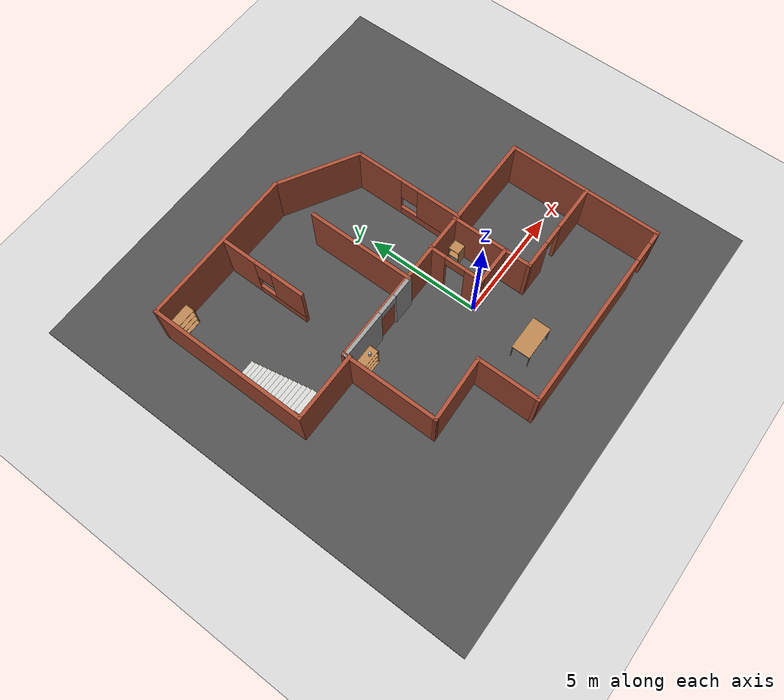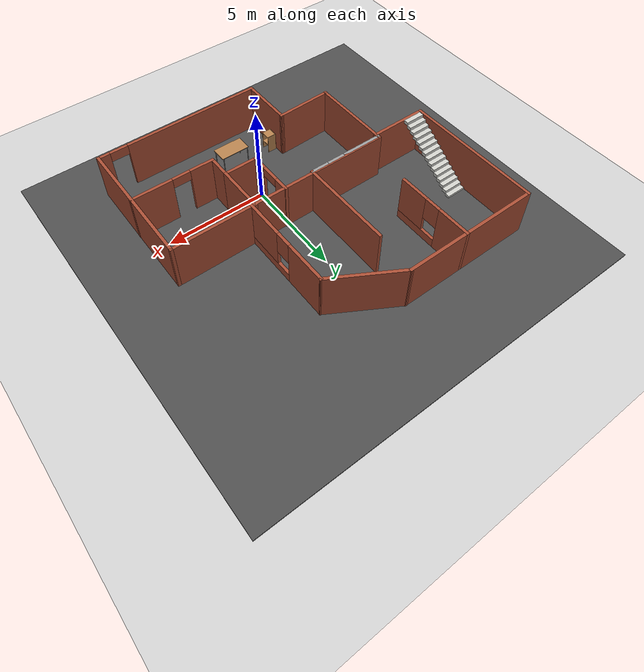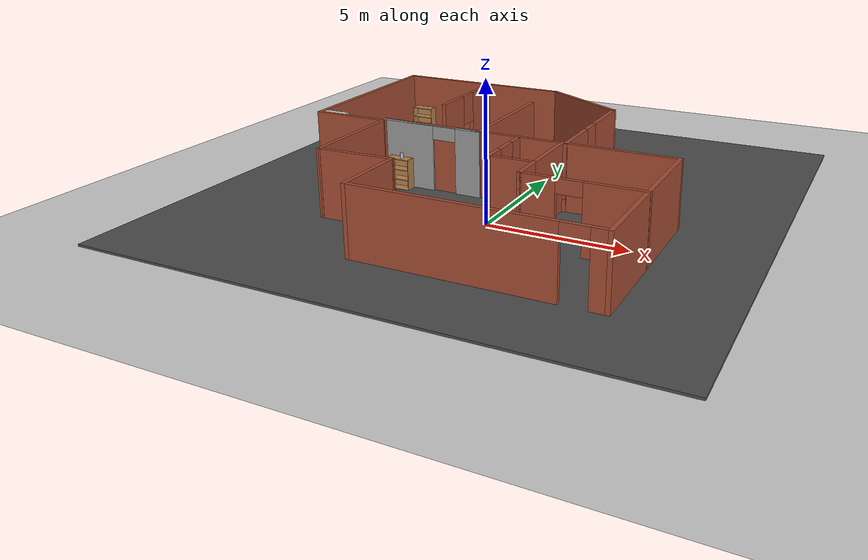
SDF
<sdf version="1.7">
 <world name="default">
  <light name="sun" type="directional">
   <pose>0 0 10 0 -0 0</pose>
   <diffuse>0.8 0.8 0.8 1</diffuse>
   <specular>0.2 0.2 0.2 1</specular>
   <attenuation>
    <range>1000</range>
    <constant>0.9</constant>
    <linear>0.01</linear>
    <quadratic>0.001</quadratic>
   </attenuation>
   <direction>-0.5 0.1 -0.9</direction>
   <spot><inner_angle>0</inner_angle><outer_angle>0</outer_angle><falloff>0</falloff></spot>
  </light>
  <model name="ground_plane">
   <static>1</static>
   <link name="link">
    <collision name="collision">
     <geometry><plane><normal>0 0 1</normal><size>100 100</size></plane></geometry>
     <surface><friction><ode><mu>100</mu><mu2>50</mu2></ode></friction></surface>
    </collision>
    <visual name="visual">
     <cast_shadows>0</cast_shadows>
     <geometry><plane><normal>0 0 1</normal><size>100 100</size></plane></geometry>
     <material>
      <script><uri>file://media/materials/scripts/gazebo.material</uri><name>Gazebo/Grey</name></script>
     </material>
    </visual>
   </link>
  </model>
  <gravity>0 0 -9.8</gravity>
  <magnetic_field>6e-06 2.3e-05 -4.2e-05</magnetic_field>
  <atmosphere type="adiabatic"/>
  <physics type="ode">
   <max_step_size>0.001</max_step_size>
   <real_time_factor>1</real_time_factor>
   <real_time_update_rate>1000</real_time_update_rate>
  </physics>
  <scene><ambient>0.4 0.4 0.4 1</ambient><background>0.7 0.7 0.7 1</background><shadows>1</shadows></scene>
  <audio><device>default</device></audio>
  <spherical_coordinates>
   <surface_model>EARTH_WGS84</surface_model>
   <latitude_deg>0</latitude_deg>
   <longitude_deg>0</longitude_deg>
   <elevation>0</elevation>
   <heading_deg>0</heading_deg>
  </spherical_coordinates>
  <model name="my_home">
   <pose>0.28264 -1.04152 0 0 -0 0</pose>
   <link name="Wall_0">
    <collision name="Wall_0_Collision">
     <geometry><box><size>2.75 0.15 2.5</size></box></geometry>
     <pose>0 0 1.25 0 -0 0</pose>
    </collision>
    <visual name="Wall_0_Visual">
     <pose>0 0 1.25 0 -0 0</pose>
     <geometry><box><size>2.75 0.15 2.5</size></box></geometry>
     <material>
      <script><uri>file://media/materials/scripts/gazebo.material</uri><name>Gazebo/Bricks</name></script>
      <ambient>1 1 1 1</ambient>
     </material>
     <meta><layer>0</layer></meta>
    </visual>
    <pose>-2.80264 -2.01848 0 0 -0 -1.5708</pose>
   </link>
   <link name="Wall_11">
    <pose>-0.14468 2.14348 0 0 -0 -1.5708</pose>
    <visual name="Wall_11_Visual_0">
     <pose>-0.856343 0 1.25 0 -0 0</pose>
     <geometry><box><size>0.787313 0.15 2.5</size></box></geometry>
     <material>
      <script><uri>file://media/materials/scripts/gazebo.material</uri><name>Gazebo/Bricks</name></script>
      <ambient>1 1 1 1</ambient>
     </material>
     <meta><layer>0</layer></meta>
    </visual>
    <collision name="Wall_11_Collision_0">
     <geometry><box><size>0.787313 0.15 2.5</size></box></geometry>
     <pose>-0.856343 0 1.25 0 -0 0</pose>
    </collision>
    <visual name="Wall_11_Visual_1">
     <pose>0.843657 0 1.25 0 -0 0</pose>
     <geometry><box><size>0.812687 0.15 2.5</size></box></geometry>
     <material>
      <script><uri>file://media/materials/scripts/gazebo.material</uri><name>Gazebo/Bricks</name></script>
      <ambient>1 1 1 1</ambient>
     </material>
     <meta><layer>0</layer></meta>
    </visual>
    <collision name="Wall_11_Collision_1">
     <geometry><box><size>0.812687 0.15 2.5</size></box></geometry>
     <pose>0.843657 0 1.25 0 -0 0</pose>
    </collision>
    <visual name="Wall_11_Visual_2">
     <pose>-0.012687 0 2.25 0 -0 0</pose>
     <geometry><box><size>0.9 0.15 0.5</size></box></geometry>
     <material>
      <script><uri>file://media/materials/scripts/gazebo.material</uri><name>Gazebo/Bricks</name></script>
      <ambient>1 1 1 1</ambient>
     </material>
     <meta><layer>0</layer></meta>
    </visual>
    <collision name="Wall_11_Collision_2">
     <geometry><box><size>0.9 0.15 0.5</size></box></geometry>
     <pose>-0.012687 0 2.25 0 -0 0</pose>
    </collision>
   </link>
   <link name="Wall_12">
    <collision name="Wall_12_Collision">
     <geometry><box><size>1.75 0.15 2.5</size></box></geometry>
     <pose>0 0 1.25 0 -0 0</pose>
    </collision>
    <visual name="Wall_12_Visual">
     <pose>0 0 1.25 0 -0 0</pose>
     <geometry><box><size>1.75 0.15 2.5</size></box></geometry>
     <material>
      <script><uri>file://media/materials/scripts/gazebo.material</uri><name>Gazebo/Bricks</name></script>
      <ambient>1 1 1 1</ambient>
     </material>
     <meta><layer>0</layer></meta>
    </visual>
    <pose>0.65532 0.968484 0 0 -0 0</pose>
   </link>
   <link name="Wall_13">
    <collision name="Wall_13_Collision">
     <geometry><box><size>2.5 0.15 2.5</size></box></geometry>
     <pose>0 0 1.25 0 -0 0</pose>
    </collision>
    <visual name="Wall_13_Visual">
     <pose>0 0 1.25 0 -0 0</pose>
     <geometry><box><size>2.5 0.15 2.5</size></box></geometry>
     <material>
      <script><uri>file://media/materials/scripts/gazebo.material</uri><name>Gazebo/Bricks</name></script>
      <ambient>1 1 1 1</ambient>
     </material>
     <meta><layer>0</layer></meta>
    </visual>
    <pose>1.45532 2.14348 0 0 -0 1.5708</pose>
   </link>
   <link name="Wall_15">
    <collision name="Wall_15_Collision">
     <geometry><box><size>1.25 0.15 2.5</size></box></geometry>
     <pose>0 0 1.25 0 -0 0</pose>
    </collision>
    <visual name="Wall_15_Visual">
     <pose>0 0 1.25 0 -0 0</pose>
     <geometry><box><size>1.25 0.15 2.5</size></box></geometry>
     <material>
      <script><uri>file://media/materials/scripts/gazebo.material</uri><name>Gazebo/Bricks</name></script>
      <ambient>1 1 1 1</ambient>
     </material>
     <meta><layer>0</layer></meta>
    </visual>
    <pose>1.45532 0.418484 0 0 -0 -1.5708</pose>
   </link>
   <link name="Wall_16">
    <pose>3.50532 -0.131516 0 0 -0 0</pose>
    <visual name="Wall_16_Visual_0">
     <pose>-1.49047 0 1.25 0 -0 0</pose>
     <geometry><box><size>1.26907 0.15 2.5</size></box></geometry>
     <material>
      <script><uri>file://media/materials/scripts/gazebo.material</uri><name>Gazebo/Bricks</name></script>
      <ambient>1 1 1 1</ambient>
     </material>
     <meta><layer>0</layer></meta>
    </visual>
    <collision name="Wall_16_Collision_0">
     <geometry><box><size>1.26907 0.15 2.5</size></box></geometry>
     <pose>-1.49047 0 1.25 0 -0 0</pose>
    </collision>
    <visual name="Wall_16_Visual_1">
     <pose>1.08453 0 1.25 0 -0 0</pose>
     <geometry><box><size>2.08093 0.15 2.5</size></box></geometry>
     <material>
      <script><uri>file://media/materials/scripts/gazebo.material</uri><name>Gazebo/Bricks</name></script>
      <ambient>1 1 1 1</ambient>
     </material>
     <meta><layer>0</layer></meta>
    </visual>
    <collision name="Wall_16_Collision_1">
     <geometry><box><size>2.08093 0.15 2.5</size></box></geometry>
     <pose>1.08453 0 1.25 0 -0 0</pose>
    </collision>
    <visual name="Wall_16_Visual_2">
     <pose>-0.405932 0 2.25 0 -0 0</pose>
     <geometry><box><size>0.9 0.15 0.5</size></box></geometry>
     <material>
      <script><uri>file://media/materials/scripts/gazebo.material</uri><name>Gazebo/Bricks</name></script>
      <ambient>1 1 1 1</ambient>
     </material>
     <meta><layer>0</layer></meta>
    </visual>
    <collision name="Wall_16_Collision_2">
     <geometry><box><size>0.9 0.15 0.5</size></box></geometry>
     <pose>-0.405932 0 2.25 0 -0 0</pose>
    </collision>
   </link>
   <link name="Wall_5">
    <pose>1.37235 -3.31848 0 0 -0 0</pose>
    <visual name="Wall_5_Visual_0">
     <pose>-0.766544 0 1.25 0 -0 0</pose>
     <geometry><box><size>6.96691 0.15 2.5</size></box></geometry>
     <material>
      <script><uri>file://media/materials/scripts/gazebo.material</uri><name>Gazebo/Bricks</name></script>
      <ambient>1 1 1 1</ambient>
     </material>
     <meta><layer>0</layer></meta>
    </visual>
    <collision name="Wall_5_Collision_0">
     <geometry><box><size>6.96691 0.15 2.5</size></box></geometry>
     <pose>-0.766544 0 1.25 0 -0 0</pose>
    </collision>
    <visual name="Wall_5_Visual_1">
     <pose>3.93346 0 1.25 0 -0 0</pose>
     <geometry><box><size>0.633087 0.15 2.5</size></box></geometry>
     <material>
      <script><uri>file://media/materials/scripts/gazebo.material</uri><name>Gazebo/Bricks</name></script>
      <ambient>1 1 1 1</ambient>
     </material>
     <meta><layer>0</layer></meta>
    </visual>
    <collision name="Wall_5_Collision_1">
     <geometry><box><size>0.633087 0.15 2.5</size></box></geometry>
     <pose>3.93346 0 1.25 0 -0 0</pose>
    </collision>
    <visual name="Wall_5_Visual_2">
     <pose>3.16691 0 2.25 0 -0 0</pose>
     <geometry><box><size>0.9 0.15 0.5</size></box></geometry>
     <material>
      <script><uri>file://media/materials/scripts/gazebo.material</uri><name>Gazebo/Bricks</name></script>
      <ambient>1 1 1 1</ambient>
     </material>
     <meta><layer>0</layer></meta>
    </visual>
    <collision name="Wall_5_Collision_2">
     <geometry><box><size>0.9 0.15 0.5</size></box></geometry>
     <pose>3.16691 0 2.25 0 -0 0</pose>
    </collision>
   </link>
   <link name="Wall_6">
    <collision name="Wall_6_Collision">
     <geometry><box><size>6.75 0.15 2.5</size></box></geometry>
     <pose>0 0 1.25 0 -0 0</pose>
    </collision>
    <visual name="Wall_6_Visual">
     <pose>0 0 1.25 0 -0 0</pose>
     <geometry><box><size>6.75 0.15 2.5</size></box></geometry>
     <material>
      <script><uri>file://media/materials/scripts/gazebo.material</uri><name>Gazebo/Bricks</name></script>
      <ambient>1 1 1 1</ambient>
     </material>
     <meta><layer>0</layer></meta>
    </visual>
    <pose>5.54735 -0.018484 0 0 -0 1.5708</pose>
   </link>
   <link name="Wall_7">
    <collision name="Wall_7_Collision">
     <geometry><box><size>11.25 0.15 2.5</size></box></geometry>
     <pose>0 0 1.25 0 -0 0</pose>
    </collision>
    <visual name="Wall_7_Visual">
     <pose>0 0 1.25 0 -0 0</pose>
     <geometry><box><size>11.25 0.15 2.5</size></box></geometry>
     <material>
      <script><uri>file://media/materials/scripts/gazebo.material</uri><name>Gazebo/Bricks</name></script>
      <ambient>1 1 1 1</ambient>
     </material>
     <meta><layer>0</layer></meta>
    </visual>
    <pose>-0.002645 3.28152 0 0 -0 3.14159</pose>
   </link>
   <link name="Wall_8">
    <collision name="Wall_8_Collision">
     <geometry><box><size>4.25 0.15 2.5</size></box></geometry>
     <pose>0 0 1.25 0 -0 0</pose>
    </collision>
    <visual name="Wall_8_Visual">
     <pose>0 0 1.25 0 -0 0</pose>
     <geometry><box><size>4.25 0.15 2.5</size></box></geometry>
     <material>
      <script><uri>file://media/materials/scripts/gazebo.material</uri><name>Gazebo/Bricks</name></script>
      <ambient>1 1 1 1</ambient>
     </material>
     <meta><layer>0</layer></meta>
    </visual>
    <pose>-5.55264 1.23152 0 0 -0 -1.5708</pose>
   </link>
   <link name="Wall_9">
    <collision name="Wall_9_Collision">
     <geometry><box><size>2.90182 0.15 2.5</size></box></geometry>
     <pose>0 0 1.25 0 -0 0</pose>
    </collision>
    <visual name="Wall_9_Visual">
     <pose>0 0 1.25 0 -0 0</pose>
     <geometry><box><size>2.90182 0.15 2.5</size></box></geometry>
     <material>
      <script><uri>file://media/materials/scripts/gazebo.material</uri><name>Gazebo/Bricks</name></script>
      <ambient>1 1 1 1</ambient>
     </material>
     <meta><layer>0</layer></meta>
    </visual>
    <pose>-4.17764 -0.768484 0 0 -0 0.036348</pose>
   </link>
   <static>1</static>
  </model>
  <model name="cabinet">
   <static>1</static>
   <link name="cabinet_bottom_plate">
    <inertial>
     <pose>0 0 -1 0 -0 0</pose>
     <inertia><ixx>2.05</ixx><ixy>0</ixy><ixz>0</ixz><iyy>2.05</iyy><iyz>0</iyz><izz>2.05</izz></inertia>
     <mass>25</mass>
    </inertial>
    <collision name="cabinet_bottom_plate_geom">
     <pose>0 0 0.01 0 -0 0</pose>
     <geometry><box><size>0.45 0.45 0.02</size></box></geometry>
    </collision>
    <visual name="cabinet_bottom_plate_geom_visual">
     <pose>0 0 0.01 0 -0 0</pose>
     <geometry><box><size>0.45 0.45 0.02</size></box></geometry>
     <material>
      <script><uri>file://media/materials/scripts/gazebo.material</uri><name>Gazebo/Wood</name></script>
     </material>
    </visual>
    <collision name="cabinet_bottom_plate_geom_cabinet_back_plate">
     <pose>0.235 0 0.51 0 -0 0</pose>
     <geometry><box><size>0.02 0.45 1.02</size></box></geometry>
    </collision>
    <visual name="cabinet_bottom_plate_geom_cabinet_back_plate_visual">
     <pose>0.235 0 0.51 0 -0 0</pose>
     <geometry><box><size>0.02 0.45 1.02</size></box></geometry>
     <material>
      <script><uri>file://media/materials/scripts/gazebo.material</uri><name>Gazebo/Wood</name></script>
     </material>
    </visual>
    <collision name="cabinet_bottom_plate_geom_cabinet_left_plate">
     <pose>0 0.235 0.51 0 -0 0</pose>
     <geometry><box><size>0.45 0.02 1.02</size></box></geometry>
    </collision>
    <visual name="cabinet_bottom_plate_geom_cabinet_left_plate_visual">
     <pose>0 0.235 0.51 0 -0 0</pose>
     <geometry><box><size>0.45 0.02 1.02</size></box></geometry>
     <material>
      <script><uri>file://media/materials/scripts/gazebo.material</uri><name>Gazebo/Wood</name></script>
     </material>
    </visual>
    <collision name="cabinet_bottom_plate_geom_cabinet_middle_plate">
     <pose>0 0 0.51 0 -0 0</pose>
     <geometry><box><size>0.45 0.45 0.02</size></box></geometry>
    </collision>
    <visual name="cabinet_bottom_plate_geom_cabinet_middle_plate_visual">
     <pose>0 0 0.51 0 -0 0</pose>
     <geometry><box><size>0.45 0.45 0.02</size></box></geometry>
     <material>
      <script><uri>file://media/materials/scripts/gazebo.material</uri><name>Gazebo/Wood</name></script>
     </material>
    </visual>
    <collision name="cabinet_bottom_plate_geom_cabinet_right_plate">
     <pose>0 -0.235 0.51 0 -0 0</pose>
     <geometry><box><size>0.45 0.02 1.02</size></box></geometry>
    </collision>
    <visual name="cabinet_bottom_plate_geom_cabinet_right_plate_visual">
     <pose>0 -0.235 0.51 0 -0 0</pose>
     <geometry><box><size>0.45 0.02 1.02</size></box></geometry>
     <material>
      <script><uri>file://media/materials/scripts/gazebo.material</uri><name>Gazebo/Wood</name></script>
     </material>
    </visual>
    <collision name="cabinet_bottom_plate_geom_cabinet_top_plate">
     <pose>0 0 1.01 0 -0 0</pose>
     <geometry><box><size>0.45 0.45 0.02</size></box></geometry>
    </collision>
    <visual name="cabinet_bottom_plate_geom_cabinet_top_plate_visual">
     <pose>0 0 1.01 0 -0 0</pose>
     <geometry><box><size>0.45 0.45 0.02</size></box></geometry>
     <material>
      <script><uri>file://media/materials/scripts/gazebo.material</uri><name>Gazebo/Wood</name></script>
     </material>
    </visual>
   </link>
   <pose>-2.17456 -2.4578 0 0 0 -3.13697</pose>
  </model>
  <model name="bookshelf">
   <static>1</static>
   <link name="link">
    <inertial><mass>1</mass></inertial>
    <collision name="back">
     <pose>0 0.005 0.6 0 -0 0</pose>
     <geometry><box><size>0.9 0.01 1.2</size></box></geometry>
    </collision>
    <visual name="visual1">
     <pose>0 0.005 0.6 0 -0 0</pose>
     <geometry><box><size>0.9 0.01 1.2</size></box></geometry>
     <material>
      <script><uri>file://media/materials/scripts/gazebo.material</uri><name>Gazebo/Wood</name></script>
     </material>
    </visual>
    <collision name="left_side">
     <pose>0.45 -0.195 0.6 0 -0 0</pose>
     <geometry><box><size>0.02 0.4 1.2</size></box></geometry>
    </collision>
    <visual name="visual2">
     <pose>0.45 -0.195 0.6 0 -0 0</pose>
     <geometry><box><size>0.02 0.4 1.2</size></box></geometry>
     <material>
      <script><uri>file://media/materials/scripts/gazebo.material</uri><name>Gazebo/Wood</name></script>
     </material>
    </visual>
    <collision name="right_side">
     <pose>-0.45 -0.195 0.6 0 -0 0</pose>
     <geometry><box><size>0.02 0.4 1.2</size></box></geometry>
    </collision>
    <visual name="visual3">
     <pose>-0.45 -0.195 0.6 0 -0 0</pose>
     <geometry><box><size>0.02 0.4 1.2</size></box></geometry>
     <material>
      <script><uri>file://media/materials/scripts/gazebo.material</uri><name>Gazebo/Wood</name></script>
     </material>
    </visual>
    <collision name="bottom">
     <pose>0 -0.195 0.03 0 -0 0</pose>
     <geometry><box><size>0.88 0.4 0.06</size></box></geometry>
    </collision>
    <visual name="visual4">
     <pose>0 -0.195 0.03 0 -0 0</pose>
     <geometry><box><size>0.88 0.4 0.06</size></box></geometry>
     <material>
      <script><uri>file://media/materials/scripts/gazebo.material</uri><name>Gazebo/Wood</name></script>
     </material>
    </visual>
    <collision name="top">
     <pose>0 -0.195 1.19 0 -0 0</pose>
     <geometry><box><size>0.88 0.4 0.02</size></box></geometry>
    </collision>
    <visual name="visual5">
     <pose>0 -0.195 1.19 0 -0 0</pose>
     <geometry><box><size>0.88 0.4 0.02</size></box></geometry>
     <material>
      <script><uri>file://media/materials/scripts/gazebo.material</uri><name>Gazebo/Wood</name></script>
     </material>
    </visual>
    <collision name="low_shelf">
     <pose>0 -0.195 0.43 0 -0 0</pose>
     <geometry><box><size>0.88 0.4 0.02</size></box></geometry>
    </collision>
    <visual name="visual6">
     <pose>0 -0.195 0.43 0 -0 0</pose>
     <geometry><box><size>0.88 0.4 0.02</size></box></geometry>
     <material>
      <script><uri>file://media/materials/scripts/gazebo.material</uri><name>Gazebo/Wood</name></script>
     </material>
    </visual>
    <collision name="high_shelf">
     <pose>0 -0.195 0.8 0 -0 0</pose>
     <geometry><box><size>0.88 0.4 0.02</size></box></geometry>
    </collision>
    <visual name="visual7">
     <pose>0 -0.195 0.8 0 -0 0</pose>
     <geometry><box><size>0.88 0.4 0.02</size></box></geometry>
     <material>
      <script><uri>file://media/materials/scripts/gazebo.material</uri><name>Gazebo/Wood</name></script>
     </material>
    </visual>
   </link>
   <pose>-4.50375 2.03397 0 0 -0 0</pose>
  </model>
  <model name="table">
   <static>1</static>
   <link name="link">
    <collision name="surface">
     <pose>0 0 1 0 -0 0</pose>
     <geometry><box><size>1.5 0.8 0.03</size></box></geometry>
     <surface><friction><ode><mu>0.6</mu><mu2>0.6</mu2></ode></friction></surface>
    </collision>
    <visual name="visual1">
     <pose>0 0 1 0 -0 0</pose>
     <geometry><box><size>1.5 0.8 0.03</size></box></geometry>
     <material>
      <script><uri>file://media/materials/scripts/gazebo.material</uri><name>Gazebo/Wood</name></script>
     </material>
    </visual>
    <collision name="front_left_leg">
     <pose>0.68 0.38 0.5 0 -0 0</pose>
     <geometry><cylinder><radius>0.02</radius><length>1</length></cylinder></geometry>
    </collision>
    <visual name="front_left_leg">
     <pose>0.68 0.38 0.5 0 -0 0</pose>
     <geometry><cylinder><radius>0.02</radius><length>1</length></cylinder></geometry>
     <material>
      <script><uri>file://media/materials/scripts/gazebo.material</uri><name>Gazebo/Grey</name></script>
     </material>
    </visual>
    <collision name="front_right_leg">
     <pose>0.68 -0.38 0.5 0 -0 0</pose>
     <geometry><cylinder><radius>0.02</radius><length>1</length></cylinder></geometry>
    </collision>
    <visual name="front_right_leg">
     <pose>0.68 -0.38 0.5 0 -0 0</pose>
     <geometry><cylinder><radius>0.02</radius><length>1</length></cylinder></geometry>
     <material>
      <script><uri>file://media/materials/scripts/gazebo.material</uri><name>Gazebo/Grey</name></script>
     </material>
    </visual>
    <collision name="back_right_leg">
     <pose>-0.68 -0.38 0.5 0 -0 0</pose>
     <geometry><cylinder><radius>0.02</radius><length>1</length></cylinder></geometry>
    </collision>
    <visual name="back_right_leg">
     <pose>-0.68 -0.38 0.5 0 -0 0</pose>
     <geometry><cylinder><radius>0.02</radius><length>1</length></cylinder></geometry>
     <material>
      <script><uri>file://media/materials/scripts/gazebo.material</uri><name>Gazebo/Grey</name></script>
     </material>
    </visual>
    <collision name="back_left_leg">
     <pose>-0.68 0.38 0.5 0 -0 0</pose>
     <geometry><cylinder><radius>0.02</radius><length>1</length></cylinder></geometry>
    </collision>
    <visual name="back_left_leg">
     <pose>-0.68 0.38 0.5 0 -0 0</pose>
     <geometry><cylinder><radius>0.02</radius><length>1</length></cylinder></geometry>
     <material>
      <script><uri>file://media/materials/scripts/gazebo.material</uri><name>Gazebo/Grey</name></script>
     </material>
    </visual>
   </link>
   <pose>-0.08246 -2.66777 0 0 -0 0</pose>
  </model>
  <model name="beer">
   <link name="link">
    <pose>0 0 0.115 0 -0 0</pose>
    <inertial>
     <mass>0.39</mass>
     <inertia><ixx>0.00058</ixx><ixy>0</ixy><ixz>0</ixz><iyy>0.00058</iyy><iyz>0</iyz><izz>0.00019</izz></inertia>
    </inertial>
    <collision name="collision">
     <geometry><cylinder><radius>0.055</radius><length>0.23</length></cylinder></geometry>
    </collision>
    <visual name="visual">
     <geometry><cylinder><radius>0.055</radius><length>0.23</length></cylinder></geometry>
     <material>
      <script>
       <uri>model://beer/materials/scripts</uri>
       <uri>model://beer/materials/textures</uri>
       <name>Beer/Diffuse</name>
      </script>
     </material>
    </visual>
   </link>
   <pose>-4.37411 1.795 1.19999 -1e-06 2.7e-05 0.029818</pose>
  </model>
  <model name="cabinet_0">
   <static>1</static>
   <link name="cabinet_bottom_plate">
    <inertial>
     <pose>0 0 -1 0 -0 0</pose>
     <inertia><ixx>2.05</ixx><ixy>0</ixy><ixz>0</ixz><iyy>2.05</iyy><iyz>0</iyz><izz>2.05</izz></inertia>
     <mass>25</mass>
    </inertial>
    <collision name="cabinet_bottom_plate_geom">
     <pose>0 0 0.01 0 -0 0</pose>
     <geometry><box><size>0.45 0.45 0.02</size></box></geometry>
    </collision>
    <visual name="cabinet_bottom_plate_geom_visual">
     <pose>0 0 0.01 0 -0 0</pose>
     <geometry><box><size>0.45 0.45 0.02</size></box></geometry>
     <material>
      <script><uri>file://media/materials/scripts/gazebo.material</uri><name>Gazebo/Wood</name></script>
     </material>
    </visual>
    <collision name="cabinet_bottom_plate_geom_cabinet_back_plate">
     <pose>0.235 0 0.51 0 -0 0</pose>
     <geometry><box><size>0.02 0.45 1.02</size></box></geometry>
    </collision>
    <visual name="cabinet_bottom_plate_geom_cabinet_back_plate_visual">
     <pose>0.235 0 0.51 0 -0 0</pose>
     <geometry><box><size>0.02 0.45 1.02</size></box></geometry>
     <material>
      <script><uri>file://media/materials/scripts/gazebo.material</uri><name>Gazebo/Wood</name></script>
     </material>
    </visual>
    <collision name="cabinet_bottom_plate_geom_cabinet_left_plate">
     <pose>0 0.235 0.51 0 -0 0</pose>
     <geometry><box><size>0.45 0.02 1.02</size></box></geometry>
    </collision>
    <visual name="cabinet_bottom_plate_geom_cabinet_left_plate_visual">
     <pose>0 0.235 0.51 0 -0 0</pose>
     <geometry><box><size>0.45 0.02 1.02</size></box></geometry>
     <material>
      <script><uri>file://media/materials/scripts/gazebo.material</uri><name>Gazebo/Wood</name></script>
     </material>
    </visual>
    <collision name="cabinet_bottom_plate_geom_cabinet_middle_plate">
     <pose>0 0 0.51 0 -0 0</pose>
     <geometry><box><size>0.45 0.45 0.02</size></box></geometry>
    </collision>
    <visual name="cabinet_bottom_plate_geom_cabinet_middle_plate_visual">
     <pose>0 0 0.51 0 -0 0</pose>
     <geometry><box><size>0.45 0.45 0.02</size></box></geometry>
     <material>
      <script><uri>file://media/materials/scripts/gazebo.material</uri><name>Gazebo/Wood</name></script>
     </material>
    </visual>
    <collision name="cabinet_bottom_plate_geom_cabinet_right_plate">
     <pose>0 -0.235 0.51 0 -0 0</pose>
     <geometry><box><size>0.45 0.02 1.02</size></box></geometry>
    </collision>
    <visual name="cabinet_bottom_plate_geom_cabinet_right_plate_visual">
     <pose>0 -0.235 0.51 0 -0 0</pose>
     <geometry><box><size>0.45 0.02 1.02</size></box></geometry>
     <material>
      <script><uri>file://media/materials/scripts/gazebo.material</uri><name>Gazebo/Wood</name></script>
     </material>
    </visual>
    <collision name="cabinet_bottom_plate_geom_cabinet_top_plate">
     <pose>0 0 1.01 0 -0 0</pose>
     <geometry><box><size>0.45 0.45 0.02</size></box></geometry>
    </collision>
    <visual name="cabinet_bottom_plate_geom_cabinet_top_plate_visual">
     <pose>0 0 1.01 0 -0 0</pose>
     <geometry><box><size>0.45 0.45 0.02</size></box></geometry>
     <material>
      <script><uri>file://media/materials/scripts/gazebo.material</uri><name>Gazebo/Wood</name></script>
     </material>
    </visual>
   </link>
   <pose>1.41622 1.87132 0 0 -0 0</pose>
  </model>
  <model name="my_home_renovated">
   <pose>-3.09012 4.48123 0 0 -0 0</pose>
   <link name="Stairs_0">
    <visual name="Stairs_0_Visual_0">
     <pose>-4.39635 0.984753 0.083333 0 -0 0</pose>
     <geometry><box><size>1 0.233333 0.166667</size></box></geometry>
     <material>
      <script><uri>file://media/materials/scripts/gazebo.material</uri><name>Gazebo/CeilingTiled</name></script>
      <ambient>0.921569 0.807843 0.615686 1</ambient>
     </material>
     <meta><layer>0</layer></meta>
    </visual>
    <collision name="Stairs_0_Collision_0">
     <geometry><box><size>1 0.233333 0.166667</size></box></geometry>
     <pose>-4.39635 0.984753 0.083333 0 -0 0</pose>
    </collision>
    <visual name="Stairs_0_Visual_1">
     <pose>-4.39635 0.75142 0.25 0 -0 0</pose>
     <geometry><box><size>1 0.233333 0.166667</size></box></geometry>
     <material>
      <script><uri>file://media/materials/scripts/gazebo.material</uri><name>Gazebo/CeilingTiled</name></script>
      <ambient>0.921569 0.807843 0.615686 1</ambient>
     </material>
     <meta><layer>0</layer></meta>
    </visual>
    <collision name="Stairs_0_Collision_1">
     <geometry><box><size>1 0.233333 0.166667</size></box></geometry>
     <pose>-4.39635 0.75142 0.25 0 -0 0</pose>
    </collision>
    <visual name="Stairs_0_Visual_2">
     <pose>-4.39635 0.518086 0.416667 0 -0 0</pose>
     <geometry><box><size>1 0.233333 0.166667</size></box></geometry>
     <material>
      <script><uri>file://media/materials/scripts/gazebo.material</uri><name>Gazebo/CeilingTiled</name></script>
      <ambient>0.921569 0.807843 0.615686 1</ambient>
     </material>
     <meta><layer>0</layer></meta>
    </visual>
    <collision name="Stairs_0_Collision_2">
     <geometry><box><size>1 0.233333 0.166667</size></box></geometry>
     <pose>-4.39635 0.518086 0.416667 0 -0 0</pose>
    </collision>
    <visual name="Stairs_0_Visual_3">
     <pose>-4.39635 0.284753 0.583333 0 -0 0</pose>
     <geometry><box><size>1 0.233333 0.166667</size></box></geometry>
     <material>
      <script><uri>file://media/materials/scripts/gazebo.material</uri><name>Gazebo/CeilingTiled</name></script>
      <ambient>0.921569 0.807843 0.615686 1</ambient>
     </material>
     <meta><layer>0</layer></meta>
    </visual>
    <collision name="Stairs_0_Collision_3">
     <geometry><box><size>1 0.233333 0.166667</size></box></geometry>
     <pose>-4.39635 0.284753 0.583333 0 -0 0</pose>
    </collision>
    <visual name="Stairs_0_Visual_4">
     <pose>-4.39635 0.05142 0.75 0 -0 0</pose>
     <geometry><box><size>1 0.233333 0.166667</size></box></geometry>
     <material>
      <script><uri>file://media/materials/scripts/gazebo.material</uri><name>Gazebo/CeilingTiled</name></script>
      <ambient>0.921569 0.807843 0.615686 1</ambient>
     </material>
     <meta><layer>0</layer></meta>
    </visual>
    <collision name="Stairs_0_Collision_4">
     <geometry><box><size>1 0.233333 0.166667</size></box></geometry>
     <pose>-4.39635 0.05142 0.75 0 -0 0</pose>
    </collision>
    <visual name="Stairs_0_Visual_5">
     <pose>-4.39635 -0.181913 0.916667 0 -0 0</pose>
     <geometry><box><size>1 0.233333 0.166667</size></box></geometry>
     <material>
      <script><uri>file://media/materials/scripts/gazebo.material</uri><name>Gazebo/CeilingTiled</name></script>
      <ambient>0.921569 0.807843 0.615686 1</ambient>
     </material>
     <meta><layer>0</layer></meta>
    </visual>
    <collision name="Stairs_0_Collision_5">
     <geometry><box><size>1 0.233333 0.166667</size></box></geometry>
     <pose>-4.39635 -0.181913 0.916667 0 -0 0</pose>
    </collision>
    <visual name="Stairs_0_Visual_6">
     <pose>-4.39635 -0.415247 1.08333 0 -0 0</pose>
     <geometry><box><size>1 0.233333 0.166667</size></box></geometry>
     <material>
      <script><uri>file://media/materials/scripts/gazebo.material</uri><name>Gazebo/CeilingTiled</name></script>
      <ambient>0.921569 0.807843 0.615686 1</ambient>
     </material>
     <meta><layer>0</layer></meta>
    </visual>
    <collision name="Stairs_0_Collision_6">
     <geometry><box><size>1 0.233333 0.166667</size></box></geometry>
     <pose>-4.39635 -0.415247 1.08333 0 -0 0</pose>
    </collision>
    <visual name="Stairs_0_Visual_7">
     <pose>-4.39635 -0.64858 1.25 0 -0 0</pose>
     <geometry><box><size>1 0.233333 0.166667</size></box></geometry>
     <material>
      <script><uri>file://media/materials/scripts/gazebo.material</uri><name>Gazebo/CeilingTiled</name></script>
      <ambient>0.921569 0.807843 0.615686 1</ambient>
     </material>
     <meta><layer>0</layer></meta>
    </visual>
    <collision name="Stairs_0_Collision_7">
     <geometry><box><size>1 0.233333 0.166667</size></box></geometry>
     <pose>-4.39635 -0.64858 1.25 0 -0 0</pose>
    </collision>
    <visual name="Stairs_0_Visual_8">
     <pose>-4.39635 -0.881914 1.41667 0 -0 0</pose>
     <geometry><box><size>1 0.233333 0.166667</size></box></geometry>
     <material>
      <script><uri>file://media/materials/scripts/gazebo.material</uri><name>Gazebo/CeilingTiled</name></script>
      <ambient>0.921569 0.807843 0.615686 1</ambient>
     </material>
     <meta><layer>0</layer></meta>
    </visual>
    <collision name="Stairs_0_Collision_8">
     <geometry><box><size>1 0.233333 0.166667</size></box></geometry>
     <pose>-4.39635 -0.881914 1.41667 0 -0 0</pose>
    </collision>
    <visual name="Stairs_0_Visual_9">
     <pose>-4.39635 -1.11525 1.58333 0 -0 0</pose>
     <geometry><box><size>1 0.233333 0.166667</size></box></geometry>
     <material>
      <script><uri>file://media/materials/scripts/gazebo.material</uri><name>Gazebo/CeilingTiled</name></script>
      <ambient>0.921569 0.807843 0.615686 1</ambient>
     </material>
     <meta><layer>0</layer></meta>
    </visual>
    <collision name="Stairs_0_Collision_9">
     <geometry><box><size>1 0.233333 0.166667</size></box></geometry>
     <pose>-4.39635 -1.11525 1.58333 0 -0 0</pose>
    </collision>
    <visual name="Stairs_0_Visual_10">
     <pose>-4.39635 -1.34858 1.75 0 -0 0</pose>
     <geometry><box><size>1 0.233333 0.166667</size></box></geometry>
     <material>
      <script><uri>file://media/materials/scripts/gazebo.material</uri><name>Gazebo/CeilingTiled</name></script>
      <ambient>0.921569 0.807843 0.615686 1</ambient>
     </material>
     <meta><layer>0</layer></meta>
    </visual>
    <collision name="Stairs_0_Collision_10">
     <geometry><box><size>1 0.233333 0.166667</size></box></geometry>
     <pose>-4.39635 -1.34858 1.75 0 -0 0</pose>
    </collision>
    <visual name="Stairs_0_Visual_11">
     <pose>-4.39635 -1.58191 1.91667 0 -0 0</pose>
     <geometry><box><size>1 0.233333 0.166667</size></box></geometry>
     <material>
      <script><uri>file://media/materials/scripts/gazebo.material</uri><name>Gazebo/CeilingTiled</name></script>
      <ambient>0.921569 0.807843 0.615686 1</ambient>
     </material>
     <meta><layer>0</layer></meta>
    </visual>
    <collision name="Stairs_0_Collision_11">
     <geometry><box><size>1 0.233333 0.166667</size></box></geometry>
     <pose>-4.39635 -1.58191 1.91667 0 -0 0</pose>
    </collision>
    <visual name="Stairs_0_Visual_12">
     <pose>-4.39635 -1.81525 2.08333 0 -0 0</pose>
     <geometry><box><size>1 0.233333 0.166667</size></box></geometry>
     <material>
      <script><uri>file://media/materials/scripts/gazebo.material</uri><name>Gazebo/CeilingTiled</name></script>
      <ambient>0.921569 0.807843 0.615686 1</ambient>
     </material>
     <meta><layer>0</layer></meta>
    </visual>
    <collision name="Stairs_0_Collision_12">
     <geometry><box><size>1 0.233333 0.166667</size></box></geometry>
     <pose>-4.39635 -1.81525 2.08333 0 -0 0</pose>
    </collision>
    <visual name="Stairs_0_Visual_13">
     <pose>-4.39635 -2.04858 2.25 0 -0 0</pose>
     <geometry><box><size>1 0.233333 0.166667</size></box></geometry>
     <material>
      <script><uri>file://media/materials/scripts/gazebo.material</uri><name>Gazebo/CeilingTiled</name></script>
      <ambient>0.921569 0.807843 0.615686 1</ambient>
     </material>
     <meta><layer>0</layer></meta>
    </visual>
    <collision name="Stairs_0_Collision_13">
     <geometry><box><size>1 0.233333 0.166667</size></box></geometry>
     <pose>-4.39635 -2.04858 2.25 0 -0 0</pose>
    </collision>
    <visual name="Stairs_0_Visual_14">
     <pose>-4.39635 -2.28191 2.41667 0 -0 0</pose>
     <geometry><box><size>1 0.233333 0.166667</size></box></geometry>
     <material>
      <script><uri>file://media/materials/scripts/gazebo.material</uri><name>Gazebo/CeilingTiled</name></script>
      <ambient>0.921569 0.807843 0.615686 1</ambient>
     </material>
     <meta><layer>0</layer></meta>
    </visual>
    <collision name="Stairs_0_Collision_14">
     <geometry><box><size>1 0.233333 0.166667</size></box></geometry>
     <pose>-4.39635 -2.28191 2.41667 0 -0 0</pose>
    </collision>
   </link>
   <link name="Wall_12">
    <pose>-1.25566 2.45582 0 0 -0 -1.5708</pose>
    <visual name="Wall_12_Visual_0">
     <pose>-1.1538 0 1.25 0 -0 0</pose>
     <geometry><box><size>1.69239 0.15 2.5</size></box></geometry>
     <material>
      <script><uri>file://media/materials/scripts/gazebo.material</uri><name>Gazebo/Bricks</name></script>
      <ambient>1 1 1 1</ambient>
     </material>
     <meta><layer>0</layer></meta>
    </visual>
    <collision name="Wall_12_Collision_0">
     <geometry><box><size>1.69239 0.15 2.5</size></box></geometry>
     <pose>-1.1538 0 1.25 0 -0 0</pose>
    </collision>
    <visual name="Wall_12_Visual_1">
     <pose>0.846196 0 0.25 0 -0 0</pose>
     <geometry><box><size>2.30761 0.15 0.5</size></box></geometry>
     <material>
      <script><uri>file://media/materials/scripts/gazebo.material</uri><name>Gazebo/Bricks</name></script>
      <ambient>1 1 1 1</ambient>
     </material>
     <meta><layer>0</layer></meta>
    </visual>
    <collision name="Wall_12_Collision_1">
     <geometry><box><size>2.30761 0.15 0.5</size></box></geometry>
     <pose>0.846196 0 0.25 0 -0 0</pose>
    </collision>
    <visual name="Wall_12_Visual_2">
     <pose>1.2462 0 1.5 0 -0 0</pose>
     <geometry><box><size>1.50761 0.15 2</size></box></geometry>
     <material>
      <script><uri>file://media/materials/scripts/gazebo.material</uri><name>Gazebo/Bricks</name></script>
      <ambient>1 1 1 1</ambient>
     </material>
     <meta><layer>0</layer></meta>
    </visual>
    <collision name="Wall_12_Collision_2">
     <geometry><box><size>1.50761 0.15 2</size></box></geometry>
     <pose>1.2462 0 1.5 0 -0 0</pose>
    </collision>
    <visual name="Wall_12_Visual_3">
     <pose>0.092391 0 1.9 0 -0 0</pose>
     <geometry><box><size>0.8 0.15 1.2</size></box></geometry>
     <material>
      <script><uri>file://media/materials/scripts/gazebo.material</uri><name>Gazebo/Bricks</name></script>
      <ambient>1 1 1 1</ambient>
     </material>
     <meta><layer>0</layer></meta>
    </visual>
    <collision name="Wall_12_Collision_3">
     <geometry><box><size>0.8 0.15 1.2</size></box></geometry>
     <pose>0.092391 0 1.9 0 -0 0</pose>
    </collision>
   </link>
   <link name="Wall_14">
    <collision name="Wall_14_Collision">
     <geometry><box><size>4.75 0.15 2.5</size></box></geometry>
     <pose>0 0 1.25 0 -0 0</pose>
    </collision>
    <visual name="Wall_14_Visual">
     <pose>0 0 1.25 0 -0 0</pose>
     <geometry><box><size>4.75 0.15 2.5</size></box></geometry>
     <material>
      <script><uri>file://media/materials/scripts/gazebo.material</uri><name>Gazebo/Bricks</name></script>
      <ambient>1 1 1 1</ambient>
     </material>
     <meta><layer>0</layer></meta>
    </visual>
    <pose>1.68347 -0.014832 0 0 -0 1.5708</pose>
   </link>
   <link name="Wall_16">
    <pose>-0.241531 -2.31483 0 0 -0 3.14159</pose>
    <visual name="Wall_16_Visual_0">
     <pose>-1.50924 0 1.25 0 -0 0</pose>
     <geometry><box><size>0.981522 0.15 2.5</size></box></geometry>
     <material>
      <script><uri>file://media/materials/scripts/gazebo.material</uri><name>Gazebo/Grey</name></script>
      <ambient>1 1 1 1</ambient>
     </material>
     <meta><layer>0</layer></meta>
    </visual>
    <collision name="Wall_16_Collision_0">
     <geometry><box><size>0.981522 0.15 2.5</size></box></geometry>
     <pose>-1.50924 0 1.25 0 -0 0</pose>
    </collision>
    <visual name="Wall_16_Visual_1">
     <pose>0.940761 0 1.25 0 -0 0</pose>
     <geometry><box><size>2.11848 0.15 2.5</size></box></geometry>
     <material>
      <script><uri>file://media/materials/scripts/gazebo.material</uri><name>Gazebo/Grey</name></script>
      <ambient>1 1 1 1</ambient>
     </material>
     <meta><layer>0</layer></meta>
    </visual>
    <collision name="Wall_16_Collision_1">
     <geometry><box><size>2.11848 0.15 2.5</size></box></geometry>
     <pose>0.940761 0 1.25 0 -0 0</pose>
    </collision>
    <visual name="Wall_16_Visual_2">
     <pose>-0.568478 0 2.25 0 -0 0</pose>
     <geometry><box><size>0.9 0.15 0.5</size></box></geometry>
     <material>
      <script><uri>file://media/materials/scripts/gazebo.material</uri><name>Gazebo/Grey</name></script>
      <ambient>1 1 1 1</ambient>
     </material>
     <meta><layer>0</layer></meta>
    </visual>
    <collision name="Wall_16_Collision_2">
     <geometry><box><size>0.9 0.15 0.5</size></box></geometry>
     <pose>-0.568478 0 2.25 0 -0 0</pose>
    </collision>
   </link>
   <link name="Wall_4">
    <pose>4.97012 0.153774 0 0 -0 -1.5708</pose>
    <visual name="Wall_4_Visual_0">
     <pose>-1.407 0 1.25 0 -0 0</pose>
     <geometry><box><size>2.186 0.15 2.5</size></box></geometry>
     <material>
      <script><uri>file://media/materials/scripts/gazebo.material</uri><name>Gazebo/Bricks</name></script>
      <ambient>1 1 1 1</ambient>
     </material>
     <meta><layer>0</layer></meta>
    </visual>
    <collision name="Wall_4_Collision_0">
     <geometry><box><size>2.186 0.15 2.5</size></box></geometry>
     <pose>-1.407 0 1.25 0 -0 0</pose>
    </collision>
    <visual name="Wall_4_Visual_1">
     <pose>1.093 0 0.25 0 -0 0</pose>
     <geometry><box><size>2.814 0.15 0.5</size></box></geometry>
     <material>
      <script><uri>file://media/materials/scripts/gazebo.material</uri><name>Gazebo/Bricks</name></script>
      <ambient>1 1 1 1</ambient>
     </material>
     <meta><layer>0</layer></meta>
    </visual>
    <collision name="Wall_4_Collision_1">
     <geometry><box><size>2.814 0.15 0.5</size></box></geometry>
     <pose>1.093 0 0.25 0 -0 0</pose>
    </collision>
    <visual name="Wall_4_Visual_2">
     <pose>1.493 0 1.5 0 -0 0</pose>
     <geometry><box><size>2.014 0.15 2</size></box></geometry>
     <material>
      <script><uri>file://media/materials/scripts/gazebo.material</uri><name>Gazebo/Bricks</name></script>
      <ambient>1 1 1 1</ambient>
     </material>
     <meta><layer>0</layer></meta>
    </visual>
    <collision name="Wall_4_Collision_2">
     <geometry><box><size>2.014 0.15 2</size></box></geometry>
     <pose>1.493 0 1.5 0 -0 0</pose>
    </collision>
    <visual name="Wall_4_Visual_3">
     <pose>0.085997 0 1.9 0 -0 0</pose>
     <geometry><box><size>0.8 0.15 1.2</size></box></geometry>
     <material>
      <script><uri>file://media/materials/scripts/gazebo.material</uri><name>Gazebo/Bricks</name></script>
      <ambient>1 1 1 1</ambient>
     </material>
     <meta><layer>0</layer></meta>
    </visual>
    <collision name="Wall_4_Collision_3">
     <geometry><box><size>0.8 0.15 1.2</size></box></geometry>
     <pose>0.085997 0 1.9 0 -0 0</pose>
    </collision>
   </link>
   <link name="Wall_6">
    <collision name="Wall_6_Collision">
     <geometry><box><size>3.75 0.15 2.5</size></box></geometry>
     <pose>0 0 1.25 0 -0 0</pose>
    </collision>
    <visual name="Wall_6_Visual">
     <pose>0 0 1.25 0 -0 0</pose>
     <geometry><box><size>3.75 0.15 2.5</size></box></geometry>
     <material>
      <script><uri>file://media/materials/scripts/gazebo.material</uri><name>Gazebo/Bricks</name></script>
      <ambient>1 1 1 1</ambient>
     </material>
     <meta><layer>0</layer></meta>
    </visual>
    <pose>3.41127 3.47877 0 0 -0 2.61799</pose>
   </link>
   <link name="Wall_7">
    <collision name="Wall_7_Collision">
     <geometry><box><size>7 0.15 2.5</size></box></geometry>
     <pose>0 0 1.25 0 -0 0</pose>
    </collision>
    <visual name="Wall_7_Visual">
     <pose>0 0 1.25 0 -0 0</pose>
     <geometry><box><size>7 0.15 2.5</size></box></geometry>
     <material>
      <script><uri>file://media/materials/scripts/gazebo.material</uri><name>Gazebo/Bricks</name></script>
      <ambient>1 1 1 1</ambient>
     </material>
     <meta><layer>0</layer></meta>
    </visual>
    <pose>-1.57257 4.37877 0 0 -0 3.14159</pose>
   </link>
   <link name="Wall_8">
    <collision name="Wall_8_Collision">
     <geometry><box><size>7 0.15 2.5</size></box></geometry>
     <pose>0 0 1.25 0 -0 0</pose>
    </collision>
    <visual name="Wall_8_Visual">
     <pose>0 0 1.25 0 -0 0</pose>
     <geometry><box><size>7 0.15 2.5</size></box></geometry>
     <material>
      <script><uri>file://media/materials/scripts/gazebo.material</uri><name>Gazebo/Bricks</name></script>
      <ambient>1 1 1 1</ambient>
     </material>
     <meta><layer>0</layer></meta>
    </visual>
    <pose>-4.99757 0.953774 0 0 -0 -1.5708</pose>
   </link>
   <link name="Wall_9">
    <collision name="Wall_9_Collision">
     <geometry><box><size>3 0.15 2.5</size></box></geometry>
     <pose>0 0 1.25 0 -0 0</pose>
    </collision>
    <visual name="Wall_9_Visual">
     <pose>0 0 1.25 0 -0 0</pose>
     <geometry><box><size>3 0.15 2.5</size></box></geometry>
     <material>
      <script><uri>file://media/materials/scripts/gazebo.material</uri><name>Gazebo/Bricks</name></script>
      <ambient>1 1 1 1</ambient>
     </material>
     <meta><layer>0</layer></meta>
    </visual>
    <pose>-3.57257 -2.47123 0 0 -0 0</pose>
   </link>
   <static>1</static>
  </model>
  <model name="asphalt_plane">
   <static>1</static>
   <link name="link">
    <collision name="collision"><geometry><box><size>20 20 0.1</size></box></geometry></collision>
    <visual name="visual">
     <cast_shadows>0</cast_shadows>
     <geometry><box><size>20 20 0.1</size></box></geometry>
     <material>
      <script>
       <uri>model://asphalt_plane/materials/scripts</uri>
       <uri>model://asphalt_plane/materials/textures</uri>
       <name>vrc/asphalt</name>
      </script>
     </material>
    </visual>
   </link>
   <pose>-0.850136 2.81424 0 0 -0 0</pose>
  </model>
  <model name="bookshelf_0">
   <static>1</static>
   <link name="link">
    <inertial><mass>1</mass></inertial>
    <collision name="back">
     <pose>0 0.005 0.6 0 -0 0</pose>
     <geometry><box><size>0.9 0.01 1.2</size></box></geometry>
    </collision>
    <visual name="visual1">
     <pose>0 0.005 0.6 0 -0 0</pose>
     <geometry><box><size>0.9 0.01 1.2</size></box></geometry>
     <material>
      <script><uri>file://media/materials/scripts/gazebo.material</uri><name>Gazebo/Wood</name></script>
     </material>
    </visual>
    <collision name="left_side">
     <pose>0.45 -0.195 0.6 0 -0 0</pose>
     <geometry><box><size>0.02 0.4 1.2</size></box></geometry>
    </collision>
    <visual name="visual2">
     <pose>0.45 -0.195 0.6 0 -0 0</pose>
     <geometry><box><size>0.02 0.4 1.2</size></box></geometry>
     <material>
      <script><uri>file://media/materials/scripts/gazebo.material</uri><name>Gazebo/Wood</name></script>
     </material>
    </visual>
    <collision name="right_side">
     <pose>-0.45 -0.195 0.6 0 -0 0</pose>
     <geometry><box><size>0.02 0.4 1.2</size></box></geometry>
    </collision>
    <visual name="visual3">
     <pose>-0.45 -0.195 0.6 0 -0 0</pose>
     <geometry><box><size>0.02 0.4 1.2</size></box></geometry>
     <material>
      <script><uri>file://media/materials/scripts/gazebo.material</uri><name>Gazebo/Wood</name></script>
     </material>
    </visual>
    <collision name="bottom">
     <pose>0 -0.195 0.03 0 -0 0</pose>
     <geometry><box><size>0.88 0.4 0.06</size></box></geometry>
    </collision>
    <visual name="visual4">
     <pose>0 -0.195 0.03 0 -0 0</pose>
     <geometry><box><size>0.88 0.4 0.06</size></box></geometry>
     <material>
      <script><uri>file://media/materials/scripts/gazebo.material</uri><name>Gazebo/Wood</name></script>
     </material>
    </visual>
    <collision name="top">
     <pose>0 -0.195 1.19 0 -0 0</pose>
     <geometry><box><size>0.88 0.4 0.02</size></box></geometry>
    </collision>
    <visual name="visual5">
     <pose>0 -0.195 1.19 0 -0 0</pose>
     <geometry><box><size>0.88 0.4 0.02</size></box></geometry>
     <material>
      <script><uri>file://media/materials/scripts/gazebo.material</uri><name>Gazebo/Wood</name></script>
     </material>
    </visual>
    <collision name="low_shelf">
     <pose>0 -0.195 0.43 0 -0 0</pose>
     <geometry><box><size>0.88 0.4 0.02</size></box></geometry>
    </collision>
    <visual name="visual6">
     <pose>0 -0.195 0.43 0 -0 0</pose>
     <geometry><box><size>0.88 0.4 0.02</size></box></geometry>
     <material>
      <script><uri>file://media/materials/scripts/gazebo.material</uri><name>Gazebo/Wood</name></script>
     </material>
    </visual>
    <collision name="high_shelf">
     <pose>0 -0.195 0.8 0 -0 0</pose>
     <geometry><box><size>0.88 0.4 0.02</size></box></geometry>
    </collision>
    <visual name="visual7">
     <pose>0 -0.195 0.8 0 -0 0</pose>
     <geometry><box><size>0.88 0.4 0.02</size></box></geometry>
     <material>
      <script><uri>file://media/materials/scripts/gazebo.material</uri><name>Gazebo/Wood</name></script>
     </material>
    </visual>
   </link>
   <pose>-7.39909 8.74342 0 0 -0 0</pose>
  </model>
 </world>
</sdf>
